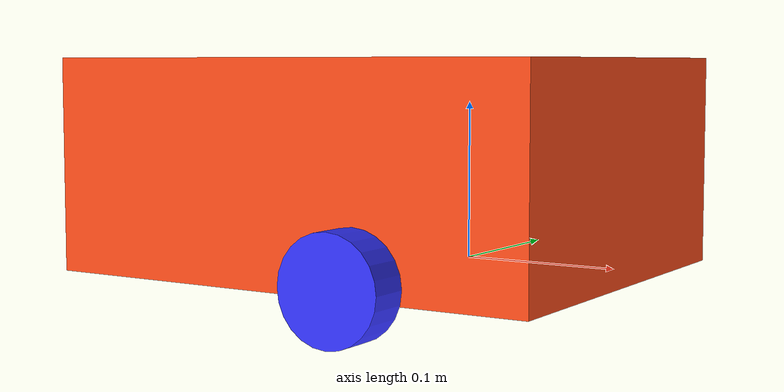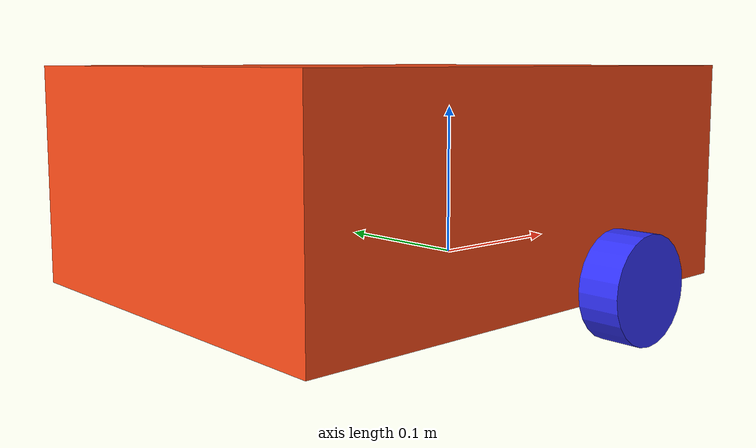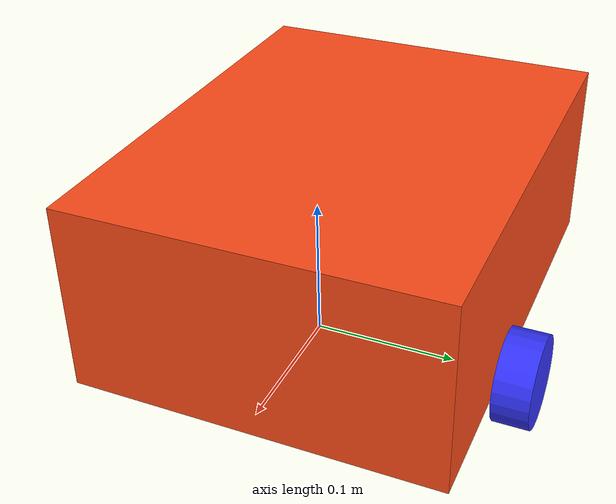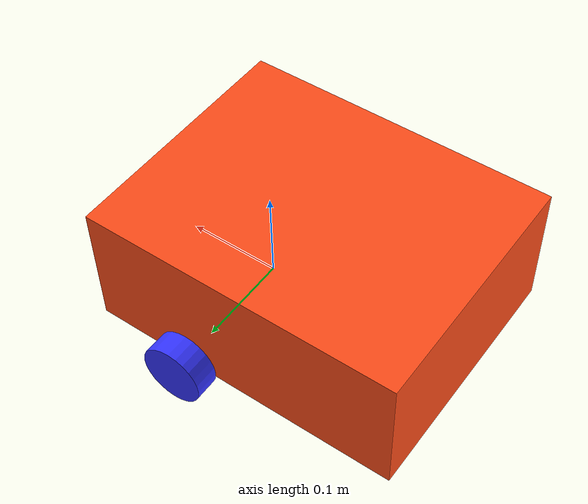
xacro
<?xml version="1.0"?>
<!-- Declaración del XML. Define la versión y estructura general. -->

<robot xmlns:xacro="http://www.ros.org/wiki/xacro" name="robot">
    <!-- Nodo raíz del archivo que define un robot.
         Incluye el espacio de nombres para usar macros `xacro`. -->

    <!-- Inclusión de un archivo externo con definiciones básicas del robot. -->
    <xacro:include filename="robot_core.xacro" />
    <!--
         Aquí se asume que `robot_core.xacro` contiene partes esenciales del robot,
         como enlaces, articulaciones, sensores o cualquier configuración básica reutilizable.
    -->

    <!-- Configuración específica para Gazebo -->
    <gazebo>
        <!-- Plugin de Gazebo para activar sensores y usar Ogre2 como motor gráfico -->
        <plugin filename="ignition-gazebo-sensors-system" name="ignition::gazebo::systems::Sensors">
            <render_engine>ogre2</render_engine>
        </plugin>

        <!-- Plugin para publicar los estados de las articulaciones (`joint_states`) -->
        <plugin filename="ignition-gazebo-joint-state-publisher-system" name="ignition::gazebo::systems::JointStatePublisher">
            <topic>joint_states</topic>
        </plugin>

        <!-- Plugin de control diferencial para las ruedas del robot -->
        <plugin filename="ignition-gazebo-diff-drive-system" name="ignition::gazebo::systems::DiffDrive">
            <left_joint>left_wheel_joint</left_joint> <!-- Articulación de la rueda izquierda -->
            <right_joint>right_wheel_joint</right_joint> <!-- Articulación de la rueda derecha -->
            <frame_id>odom</frame_id> <!-- Marco de referencia para la odometría -->
            <wheel_separation>0.297</wheel_separation> <!-- Separación entre las ruedas -->
            <wheel_radius>0.033</wheel_radius> <!-- Radio de las ruedas -->
            <odom_publish_frequency>20</odom_publish_frequency> <!-- Frecuencia de publicación de la odometría -->

            <!-- Configuración de aceleraciones máximas y mínimas -->
            <max_linear_acceleration>1</max_linear_acceleration>
            <min_linear_acceleration>-1</min_linear_acceleration>
            <max_angular_acceleration>2</max_angular_acceleration>
            <min_angular_acceleration>-2</min_angular_acceleration>

            <!-- Configuración de velocidades máximas y mínimas -->
            <max_linear_velocity>0.5</max_linear_velocity>
            <min_linear_velocity>-0.5</min_linear_velocity>
            <max_angular_velocity>1</max_angular_velocity>
            <min_angular_velocity>-1</min_angular_velocity>
        </plugin>
        <!--
             Este plugin permite que Gazebo interprete los comandos enviados al tópico `/cmd_vel`
             y controle las ruedas diferenciales del robot.
        -->
    </gazebo>
</robot>

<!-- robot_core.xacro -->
<!--
Archivo Xacro para definir un robot básico con un chasis, dos ruedas motrices y una rueda loca.
Se usa Xacro para permitir la reutilización de macros y parametrización.
-->

<robot xmlns:xacro="http://www.ros.org/wiki/xacro">

    <!-- Incluye un archivo externo con macros para definir inercia de objetos -->
    <xacro:include filename="inertial_macros.xacro"/>

    <!-- Propiedades parametrizadas para ajustar dimensiones, masas y posiciones -->
    <xacro:property name="chassis_length" value="0.335"/> <!-- Largo del chasis -->
    <xacro:property name="chassis_width" value="0.265"/>  <!-- Ancho del chasis -->
    <xacro:property name="chassis_height" value="0.138"/> <!-- Altura del chasis -->
    <xacro:property name="chassis_mass" value="1.0"/>     <!-- Masa del chasis -->
    <xacro:property name="wheel_radius" value="0.033"/>   <!-- Radio de las ruedas -->
    <xacro:property name="wheel_thickness" value="0.026"/> <!-- Grosor de las ruedas -->
    <xacro:property name="wheel_mass" value="0.05"/>       <!-- Masa de las ruedas -->
    <xacro:property name="wheel_offset_x" value="0.226"/>  <!-- Desplazamiento longitudinal de las ruedas -->
    <xacro:property name="wheel_offset_y" value="0.1485"/> <!-- Desplazamiento lateral de las ruedas -->
    <xacro:property name="wheel_offset_z" value="0.01"/>   <!-- Desplazamiento vertical de las ruedas -->
    <xacro:property name="caster_wheel_radius" value="0.01"/> <!-- Radio de la rueda loca -->
    <xacro:property name="caster_wheel_mass" value="0.01"/>  <!-- Masa de la rueda loca -->
    <xacro:property name="caster_wheel_offset_x" value="0.075"/> <!-- Posición longitudinal de la rueda loca -->
    <xacro:property name="caster_wheel_offset_z" value="${wheel_offset_z - wheel_radius + caster_wheel_radius}"/> <!-- Altura de la rueda loca -->

    <!-- Materiales para el robot -->
    <material name="white">
        <color rgba="1 1 1 1" /> <!-- Blanco -->
    </material>
    <material name="orange">
        <color rgba="1 0.3 0.1 1"/> <!-- Naranja -->
    </material>
    <material name="blue">
        <color rgba="0.2 0.2 1 1"/> <!-- Azul -->
    </material>
    <material name="black">
        <color rgba="0 0 0 1"/> <!-- Negro -->
    </material>
    <material name="red">
        <color rgba="1 0 0 1"/> <!-- Rojo -->
    </material>

    <!-- Base del robot -->
    <link name="base_link"></link> <!-- Nodo raíz del modelo -->

    <!-- Base footprint -->
    <joint name="base_footprint_joint" type="fixed">
        <parent link="base_link"/>
        <child link="base_footprint"/>
        <origin xyz="0 0 0" rpy="0 0 0"/>
    </joint>
    <link name="base_footprint"></link> <!-- Representa la proyección del robot en el suelo -->

    <!-- Chasis -->
    <joint name="chassis_joint" type="fixed">
        <parent link="base_link"/>
        <child link="chassis"/>
        <origin xyz="${-wheel_offset_x} 0 ${-wheel_offset_z}"/>
    </joint>
    <link name="chassis">
        <visual>
            <origin xyz="${chassis_length/2} 0 ${chassis_height/2}"/>
            <geometry>
                <box size="${chassis_length} ${chassis_width} ${chassis_height}"/>
            </geometry>
            <material name="orange"/>
        </visual>
        <collision>
            <origin xyz="${chassis_length/2} 0 ${chassis_height/2}"/>
            <geometry>
                <box size="${chassis_length} ${chassis_width} ${chassis_height}"/>
            </geometry>
        </collision>
        <xacro:inertial_box mass="0.5" x="${chassis_length}" y="${chassis_width}" z="${chassis_height}">
            <origin xyz="${chassis_length/2} 0 ${chassis_height/2}" rpy="0 0 0"/>
        </xacro:inertial_box>
    </link>
    <gazebo reference="chassis">
        <material>Gazebo/Orange</material>
    </gazebo>

    <!-- Rueda izquierda -->
    <joint name="left_wheel_joint" type="continuous">
        <parent link="base_link"/>
        <child link="left_wheel"/>
        <origin xyz="0 ${wheel_offset_y} 0" rpy="-${pi/2} 0 0" />
        <axis xyz="0 0 1"/>
    </joint>
    <link name="left_wheel">
        <visual>
            <geometry>
                <cylinder radius="${wheel_radius}" length="${wheel_thickness}"/>
            </geometry>
            <material name="blue"/>
        </visual>
        <collision>
            <geometry>
                <sphere radius="${wheel_radius}"/>
            </geometry>
        </collision>
        <xacro:inertial_cylinder mass="${wheel_mass}" length="${wheel_thickness}" radius="${wheel_radius}">
            <origin xyz="0 0 0" rpy="0 0 0"/>
        </xacro:inertial_cylinder>
    </link>
    <gazebo reference="left_wheel">
        <material>Gazebo/Blue</material>
    </gazebo>

    <!-- Rueda derecha -->
    <joint name="right_wheel_joint" type="continuous">
        <parent link="base_link"/>
        <child link="right_wheel"/>
        <origin xyz="0 ${-wheel_offset_y} 0" rpy="${pi/2} 0 0" />
        <axis xyz="0 0 -1"/>
    </joint>
    <link name="right_wheel">
        <visual>
            <geometry>
                <cylinder radius="${wheel_radius}" length="${wheel_thickness}"/>
            </geometry>
            <material name="blue"/>
        </visual>
        <collision>
            <geometry>
                <sphere radius="${wheel_radius}"/>
            </geometry>
        </collision>
        <xacro:inertial_cylinder mass="${wheel_mass}" length="${wheel_thickness}" radius="${wheel_radius}">
            <origin xyz="0 0 0" rpy="0 0 0"/>
        </xacro:inertial_cylinder>
    </link>
    <gazebo reference="right_wheel">
        <material>Gazebo/Blue</material>
    </gazebo>

    <!-- Rueda loca (caster) -->
    <joint name="caster_wheel_joint" type="fixed">
        <parent link="chassis"/>
        <child link="caster_wheel"/>
        <origin xyz="${caster_wheel_offset_x} 0 ${caster_wheel_offset_z}"/>
    </joint>
    <link name="caster_wheel">
        <visual>
            <geometry>
                <sphere radius="${caster_wheel_radius}"/>
            </geometry>
            <material name="white"/>
        </visual>
        <collision>
            <geometry>
                <sphere radius="${caster_wheel_radius}"/>
            </geometry>
        </collision>
        <xacro:inertial_sphere mass="${caster_wheel_mass}" radius="${caster_wheel_radius}">
            <origin xyz="0 0 0" rpy="0 0 0"/>
        </xacro:inertial_sphere>
    </link>
    <gazebo reference="caster_wheel">
        <material>Gazebo/White</material>
        <mu1 value="0.001"/>
        <mu2 value="0.001"/>
    </gazebo>
</robot>

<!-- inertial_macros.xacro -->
<robot xmlns:xacro="http://www.ros.org/wiki/xacro" >

    <!-- Macro para definir la inercia de una esfera -->
    <xacro:macro name="inertial_sphere" params="mass radius *origin">
        <inertial>
            <!-- Inserta el bloque opcional para especificar el origen -->
            <xacro:insert_block name="origin"/>
            <mass value="${mass}" />
            <inertia ixx="${(2/5) * mass * (radius*radius)}" ixy="0.0" ixz="0.0"
                    iyy="${(2/5) * mass * (radius*radius)}" iyz="0.0"
                    izz="${(2/5) * mass * (radius*radius)}" />
        </inertial>
    </xacro:macro>

    <!-- Macro para definir la inercia de una caja rectangular -->
    <xacro:macro name="inertial_box" params="mass x y z *origin">
        <inertial>
            <!-- Inserta el bloque opcional para especificar el origen -->
            <xacro:insert_block name="origin"/>
            <mass value="${mass}" />
            <inertia ixx="${(1/12) * mass * (y*y+z*z)}" ixy="0.0" ixz="0.0"
                    iyy="${(1/12) * mass * (x*x+z*z)}" iyz="0.0"
                    izz="${(1/12) * mass * (x*x+y*y)}" />
        </inertial>
    </xacro:macro>

    <!-- Macro para definir la inercia de un cilindro -->
    <xacro:macro name="inertial_cylinder" params="mass length radius *origin">
        <inertial>
            <!-- Inserta el bloque opcional para especificar el origen -->
            <xacro:insert_block name="origin"/>
            <mass value="${mass}" />
            <inertia ixx="${(1/12) * mass * (3*radius*radius + length*length)}" ixy="0.0" ixz="0.0"
                    iyy="${(1/12) * mass * (3*radius*radius + length*length)}" iyz="0.0"
                    izz="${(1/2) * mass * (radius*radius)}" />
        </inertial>
    </xacro:macro>

</robot>
